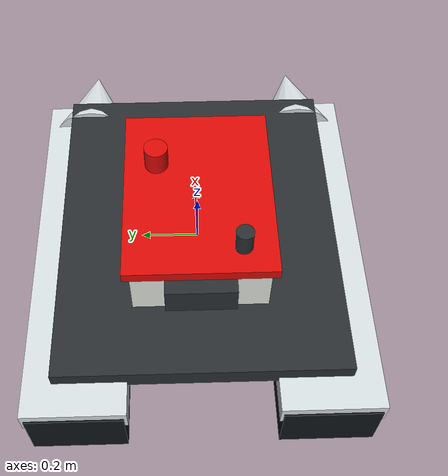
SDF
<?xml version="1.0"?>
<sdf version="1.10">
  <model name="sim332_usv_green">
    <include merge="true"><uri>model://unity_usv_m1500</uri></include>
    <plugin filename="libBoatWaveFollower.so" name="gz::sim::systems::BoatWaveFollower">
      <mean_z>0.0</mean_z><heave_amplitude>0.02</heave_amplitude>
      <roll_amplitude>0.025</roll_amplitude><pitch_amplitude>0.018</pitch_amplitude>
      <primary_frequency>1.1</primary_frequency><secondary_frequency>1.7</secondary_frequency>
      <wave_number_x>0.35</wave_number_x><wave_number_y>0.22</wave_number_y>
      <velocity_topic>/model/own_02/cmd_vel</velocity_topic>
    </plugin>
  </model>
</sdf>

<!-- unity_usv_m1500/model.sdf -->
<sdf version="1.10">
  <!-- Product vehicle visuals restored to physical 1:1 scale -->
  <model name="unity_usv_m1500">
    <static>false</static>
    <link name="hull">
      <gravity>false</gravity>
      <enable_wind>true</enable_wind>
      <inertial>
        <mass>35.0</mass>
        <inertia>
          <ixx>4.58</ixx>
          <iyy>7.61</iyy>
          <izz>10.09</izz>
          <ixy>0</ixy>
          <ixz>0</ixz>
          <iyz>0</iyz>
        </inertia>
      </inertial>
      <collision name="vehicle_envelope">
        <pose>0 0 0.27 0 0 0</pose>
        <geometry>
          <box>
            <size>1.50 1.10 0.54</size>
          </box>
        </geometry>
      </collision>
      <visual name="port_pontoon_lower">
        <pose>-0.1699999999 0.3900000001 0.01999999998 0 0 0</pose>
        <geometry>
          <box>
            <size>1.16 0.3000000001 0.2</size>
          </box>
        </geometry>
        <material>
          <ambient>0.025 0.035 0.045 1</ambient>
          <diffuse>0.055 0.075 0.09 1</diffuse>
        </material>
      </visual>
      <visual name="starboard_pontoon_lower">
        <pose>-0.1699999999 -0.3900000001 0.01999999998 0 0 0</pose>
        <geometry>
          <box>
            <size>1.16 0.3000000001 0.2</size>
          </box>
        </geometry>
        <material>
          <ambient>0.025 0.035 0.045 1</ambient>
          <diffuse>0.055 0.075 0.09 1</diffuse>
        </material>
      </visual>
      <visual name="port_pontoon_bow">
        <pose>0.58 0.3900000001 0.07000000002 0 1.5707963268 0</pose>
        <geometry>
          <cone>
            <radius>0.1499999999</radius>
            <length>0.34</length>
          </cone>
        </geometry>
        <material>
          <ambient>0.42 0.44 0.45 1</ambient>
          <diffuse>0.84 0.87 0.88 1</diffuse>
        </material>
      </visual>
      <visual name="starboard_pontoon_bow">
        <pose>0.58 -0.3900000001 0.07000000002 0 1.5707963268 0</pose>
        <geometry>
          <cone>
            <radius>0.1499999999</radius>
            <length>0.34</length>
          </cone>
        </geometry>
        <material>
          <ambient>0.42 0.44 0.45 1</ambient>
          <diffuse>0.84 0.87 0.88 1</diffuse>
        </material>
      </visual>
      <visual name="port_pontoon_cap">
        <pose>-0.1200000001 0.3900000001 0.11 0 0 0</pose>
        <geometry>
          <box>
            <size>1.25 0.32 0.07999999992</size>
          </box>
        </geometry>
        <material>
          <ambient>0.42 0.44 0.45 1</ambient>
          <diffuse>0.84 0.87 0.88 1</diffuse>
        </material>
      </visual>
      <visual name="starboard_pontoon_cap">
        <pose>-0.1200000001 -0.3900000001 0.11 0 0 0</pose>
        <geometry>
          <box>
            <size>1.25 0.32 0.07999999992</size>
          </box>
        </geometry>
        <material>
          <ambient>0.42 0.44 0.45 1</ambient>
          <diffuse>0.84 0.87 0.88 1</diffuse>
        </material>
      </visual>
      <visual name="cross_deck">
        <pose>-0.07999999992 0 0.1650000001 0 0 0</pose>
        <geometry>
          <box>
            <size>1.12 0.92 0.07000000002</size>
          </box>
        </geometry>
        <material>
          <ambient>0.08 0.09 0.095 1</ambient>
          <diffuse>0.16 0.18 0.19 1</diffuse>
        </material>
      </visual>
      <visual name="equipment_bay">
        <pose>-0.1200000001 0 0.29 0 0 0</pose>
        <geometry>
          <box>
            <size>0.58 0.43 0.2</size>
          </box>
        </geometry>
        <material>
          <ambient>0.45 0.455 0.44 1</ambient>
          <diffuse>0.90 0.91 0.88 1</diffuse>
        </material>
      </visual>
      <visual name="equipment_lid">
        <pose>-0.1200000001 0 0.405 0 0 0</pose>
        <geometry>
          <box>
            <size>0.6199999999 0.47 0.03499999992</size>
          </box>
        </geometry>
        <material>
          <ambient>0.43 0.018 0.012 1</ambient>
          <diffuse>0.86 0.035 0.025 1</diffuse>
        </material>
      </visual>
      <visual name="d435_camera">
        <pose>0.1900000001 0 0.32 0 0 0</pose>
        <geometry>
          <box>
            <size>0.045 0.1499999999 0.05000000004</size>
          </box>
        </geometry>
        <material>
          <ambient>0.012 0.12 0.18 1</ambient>
          <diffuse>0.025 0.25 0.38 1</diffuse>
        </material>
      </visual>
      <visual name="jetson_enclosure">
        <pose>-0.38 0 0.31 0 0 0</pose>
        <geometry>
          <box>
            <size>0.16 0.22 0.1000000001</size>
          </box>
        </geometry>
        <material>
          <ambient>0.08 0.09 0.095 1</ambient>
          <diffuse>0.16 0.18 0.19 1</diffuse>
        </material>
      </visual>
      <visual name="rtk_antenna">
        <pose>-0.34 -0.13 0.4600000001 0 0 0</pose>
        <geometry>
          <cylinder>
            <radius>0.02750000004</radius>
            <length>0.07999999992</length>
          </cylinder>
        </geometry>
        <material>
          <ambient>0.08 0.09 0.095 1</ambient>
          <diffuse>0.16 0.18 0.19 1</diffuse>
        </material>
      </visual>
      <visual name="mid360">
        <pose>-0.03000000006 0.13 0.4800000001 0 0 0</pose>
        <geometry>
          <cylinder>
            <radius>0.03749999994</radius>
            <length>0.07999999992</length>
          </cylinder>
        </geometry>
        <material>
          <ambient>0.43 0.018 0.012 1</ambient>
          <diffuse>0.86 0.035 0.025 1</diffuse>
        </material>
      </visual>
      <sensor name="front_camera" type="camera">
        <pose>0.48 0 0.52 0 0 0</pose>
        <update_rate>20</update_rate>
        <camera>
          <horizontal_fov>1.047</horizontal_fov>
          <image>
            <width>320</width>
            <height>180</height>
            <format>R8G8B8</format>
          </image>
          <clip>
            <near>0.05</near>
            <far>200</far>
          </clip>
        </camera>
        <always_on>true</always_on>
        <visualize>false</visualize>
      </sensor>
      <sensor name="front_lidar" type="gpu_lidar">
        <pose>-0.03 0.13 0.48 0 0 0</pose>
        <update_rate>10</update_rate>
        <ray>
          <scan>
            <horizontal>
              <samples>361</samples>
              <resolution>1</resolution>
              <min_angle>-1.5708</min_angle>
              <max_angle>1.5708</max_angle>
            </horizontal>
          </scan>
          <range>
            <min>0.10</min>
            <max>80</max>
            <resolution>0.02</resolution>
          </range>
          <noise>
            <type>gaussian</type>
            <mean>0</mean>
            <stddev>0.01</stddev>
          </noise>
          <visibility_mask>0x01</visibility_mask>
        </ray>
        <always_on>true</always_on>
        <visualize>false</visualize>
      </sensor>
    </link>
  </model>
</sdf>
